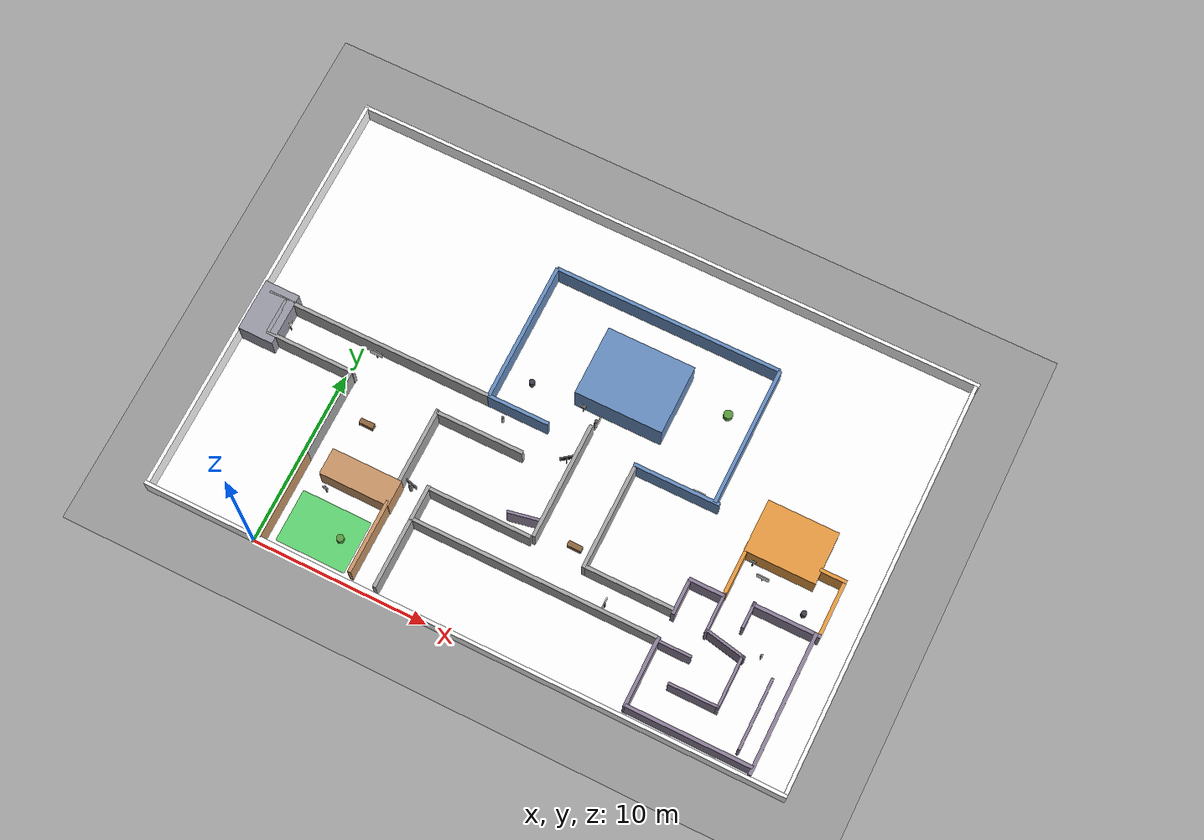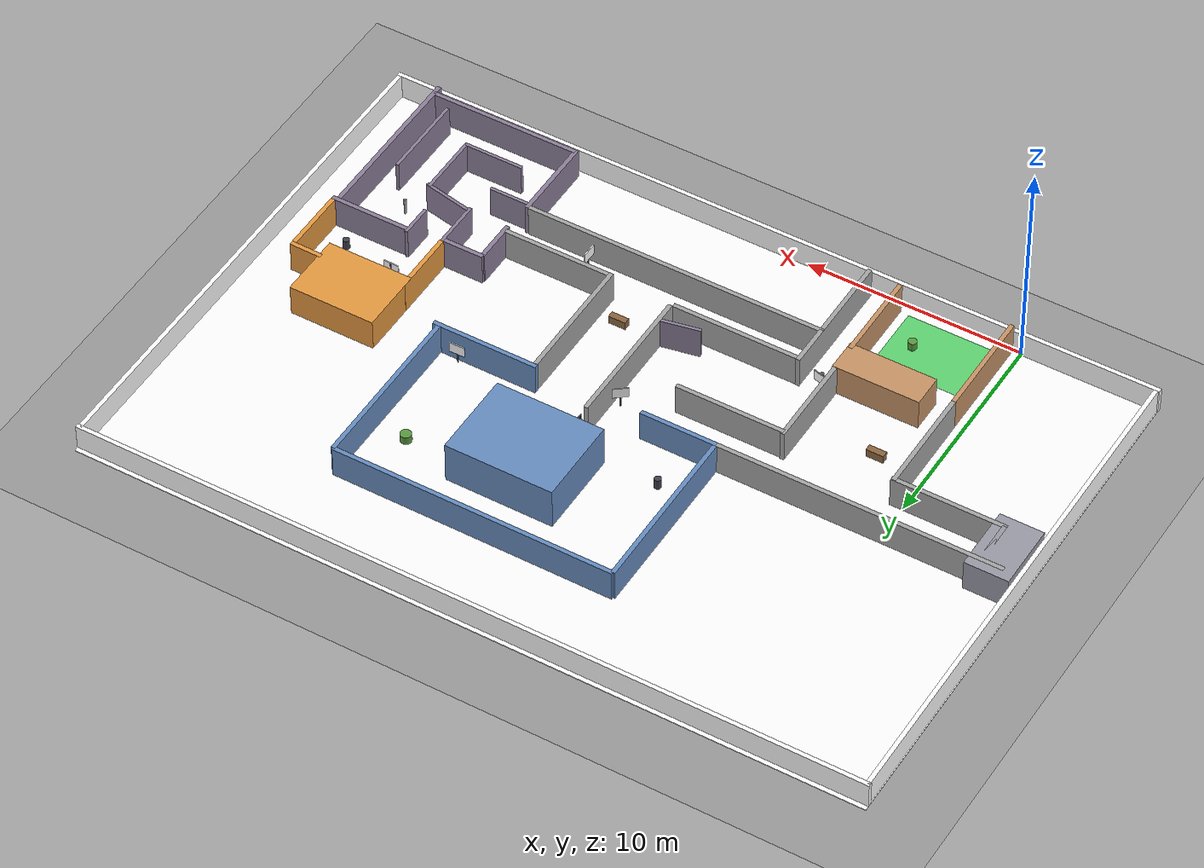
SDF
<sdf version="1.9">
 <world name="canbot_campus">
  <physics name="1ms" type="ignored">
   <max_step_size>0.001</max_step_size>
   <real_time_factor>1</real_time_factor>
   <real_time_update_rate>1000</real_time_update_rate>
  </physics>
  <plugin name="ignition::gazebo::systems::Physics" filename="ignition-gazebo-physics-system"/>
  <plugin name="ignition::gazebo::systems::UserCommands" filename="ignition-gazebo-user-commands-system"/>
  <plugin name="ignition::gazebo::systems::SceneBroadcaster" filename="ignition-gazebo-scene-broadcaster-system"/>
  <plugin name="ignition::gazebo::systems::Sensors" filename="ignition-gazebo-sensors-system">
   <render_engine>ogre2</render_engine>
  </plugin>
  <plugin name="ignition::gazebo::systems::Imu" filename="ignition-gazebo-imu-system"/>
  <gravity>0 0 -9.8</gravity>
  <magnetic_field>6e-06 2.3e-05 -4.2e-05</magnetic_field>
  <atmosphere type="adiabatic"/>
  <scene><ambient>0.4 0.4 0.4 1</ambient><background>0.7 0.7 0.7 1</background><shadows>true</shadows></scene>
  <model name="ground_plane">
   <static>true</static>
   <link name="link">
    <collision name="collision">
     <geometry><plane><normal>0 0 1</normal><size>60 60</size></plane></geometry>
    </collision>
    <visual name="visual">
     <geometry><plane><normal>0 0 1</normal><size>60 60</size></plane></geometry>
     <material><ambient>0.6 0.6 0.6 1</ambient><diffuse>0.6 0.6 0.6 1</diffuse></material>
    </visual>
    <inertial>
     <mass>1</mass>
     <inertia><ixx>1</ixx><ixy>0</ixy><ixz>0</ixz><iyy>1</iyy><iyz>0</iyz><izz>1</izz></inertia>
    </inertial>
   </link>
  </model>
  <model name="campus_grass_floor">
   <static>true</static>
   <pose>11.94 12.1043 0.002 0 -0 0</pose>
   <link name="link">
    <visual name="v">
     <geometry><plane><normal>0 0 1</normal><size>36.4 24.4</size></plane></geometry>
     <material>
      <ambient>1 1 1 1</ambient>
      <diffuse>1 1 1 1</diffuse>
      <specular>0.1 0.1 0.1 1</specular>
      <pbr>
       <metal>
        <albedo_map>model://mini_r1_v1_description/materials/textures/grass.jpg</albedo_map>
        <roughness>0.9</roughness>
        <metalness>0.0</metalness>
       </metal>
      </pbr>
     </material>
    </visual>
    <inertial>
     <mass>1</mass>
     <inertia><ixx>1</ixx><ixy>0</ixy><ixz>0</ixz><iyy>1</iyy><iyz>0</iyz><izz>1</izz></inertia>
    </inertial>
   </link>
  </model>
  <model name="boundary_north">
   <static>true</static>
   <pose>11.9577 24 0.6 0 -0 0</pose>
   <link name="link">
    <collision name="c"><geometry><box><size>36.4 0.2 1.2</size></box></geometry></collision>
    <visual name="v">
     <geometry><box><size>36.4 0.2 1.2</size></box></geometry>
     <material>
      <ambient>1 1 1 1</ambient>
      <diffuse>1 1 1 1</diffuse>
      <specular>0.1 0.1 0.1 1</specular>
      <pbr>
       <metal>
        <albedo_map>model://mini_r1_v1_description/materials/textures/mixed_brick_wall.jpg</albedo_map>
        <roughness>0.9</roughness>
        <metalness>0.0</metalness>
       </metal>
      </pbr>
     </material>
    </visual>
    <inertial>
     <mass>1</mass>
     <inertia><ixx>1</ixx><ixy>0</ixy><ixz>0</ixz><iyy>1</iyy><iyz>0</iyz><izz>1</izz></inertia>
    </inertial>
   </link>
  </model>
  <model name="boundary_south">
   <static>true</static>
   <pose>11.9233 0 0.6 0 -0 0</pose>
   <link name="link">
    <collision name="c"><geometry><box><size>36.4 0.2 1.2</size></box></geometry></collision>
    <visual name="v">
     <geometry><box><size>36.4 0.2 1.2</size></box></geometry>
     <material>
      <ambient>1 1 1 1</ambient>
      <diffuse>1 1 1 1</diffuse>
      <specular>0.1 0.1 0.1 1</specular>
      <pbr>
       <metal>
        <albedo_map>model://mini_r1_v1_description/materials/textures/mixed_brick_wall.jpg</albedo_map>
        <roughness>0.9</roughness>
        <metalness>0.0</metalness>
       </metal>
      </pbr>
     </material>
    </visual>
    <inertial>
     <mass>1</mass>
     <inertia><ixx>1</ixx><ixy>0</ixy><ixz>0</ixz><iyy>1</iyy><iyz>0</iyz><izz>1</izz></inertia>
    </inertial>
   </link>
  </model>
  <model name="boundary_east">
   <static>true</static>
   <pose>30 12 0.6 0 -0 0</pose>
   <link name="link">
    <collision name="c"><geometry><box><size>0.2 24 1.2</size></box></geometry></collision>
    <visual name="v">
     <geometry><box><size>0.2 24 1.2</size></box></geometry>
     <material>
      <ambient>1 1 1 1</ambient>
      <diffuse>1 1 1 1</diffuse>
      <specular>0.1 0.1 0.1 1</specular>
      <pbr>
       <metal>
        <albedo_map>model://mini_r1_v1_description/materials/textures/mixed_brick_wall.jpg</albedo_map>
        <roughness>0.9</roughness>
        <metalness>0.0</metalness>
       </metal>
      </pbr>
     </material>
    </visual>
    <inertial>
     <mass>1</mass>
     <inertia><ixx>1</ixx><ixy>0</ixy><ixz>0</ixz><iyy>1</iyy><iyz>0</iyz><izz>1</izz></inertia>
    </inertial>
   </link>
  </model>
  <model name="boundary_west">
   <static>true</static>
   <pose>-6.11818 12 0.6 0 -0 0</pose>
   <link name="link">
    <collision name="c"><geometry><box><size>0.2 24 1.2</size></box></geometry></collision>
    <visual name="v">
     <geometry><box><size>0.2 24 1.2</size></box></geometry>
     <material>
      <ambient>1 1 1 1</ambient>
      <diffuse>1 1 1 1</diffuse>
      <specular>0.1 0.1 0.1 1</specular>
      <pbr>
       <metal>
        <albedo_map>model://mini_r1_v1_description/materials/textures/mixed_brick_wall.jpg</albedo_map>
        <roughness>0.9</roughness>
        <metalness>0.0</metalness>
       </metal>
      </pbr>
     </material>
    </visual>
    <inertial>
     <mass>1</mass>
     <inertia><ixx>1</ixx><ixy>0</ixy><ixz>0</ixz><iyy>1</iyy><iyz>0</iyz><izz>1</izz></inertia>
    </inertial>
   </link>
  </model>
  <model name="start_zone_marker">
   <static>true</static>
   <pose>3 2 0.053051 0 -0 0</pose>
   <link name="link">
    <visual name="v">
     <geometry><box><size>4 3 0.01</size></box></geometry>
     <material><ambient>0.1 0.75 0.2 0.6</ambient><diffuse>0.15 0.8 0.25 0.7</diffuse></material>
    </visual>
    <inertial>
     <mass>1</mass>
     <inertia><ixx>1</ixx><ixy>0</ixy><ixz>0</ixz><iyy>1</iyy><iyz>0</iyz><izz>1</izz></inertia>
    </inertial>
   </link>
  </model>
  <model name="hostel_building">
   <static>true</static>
   <pose>3.63608 5.09247 0.75 0 -0 0</pose>
   <link name="link">
    <collision name="c"><geometry><box><size>4 1.5 1.5</size></box></geometry></collision>
    <visual name="v">
     <geometry><box><size>4 1.5 1.5</size></box></geometry>
     <material><ambient>0.72 0.52 0.35 1</ambient><diffuse>0.78 0.58 0.4 1</diffuse></material>
    </visual>
    <inertial>
     <mass>1</mass>
     <inertia><ixx>1</ixx><ixy>0</ixy><ixz>0</ixz><iyy>1</iyy><iyz>0</iyz><izz>1</izz></inertia>
    </inertial>
   </link>
  </model>
  <model name="hostel_wall_west">
   <static>true</static>
   <pose>0.474315 2.58058 0.752683 0 -0 0</pose>
   <link name="link">
    <collision name="c"><geometry><box><size>0.2 5 1.5</size></box></geometry></collision>
    <visual name="v">
     <geometry><box><size>0.2 5 1.5</size></box></geometry>
     <material><ambient>0.72 0.52 0.35 1</ambient><diffuse>0.78 0.58 0.4 1</diffuse></material>
    </visual>
    <inertial>
     <mass>1</mass>
     <inertia><ixx>1</ixx><ixy>0</ixy><ixz>0</ixz><iyy>1</iyy><iyz>0</iyz><izz>1</izz></inertia>
    </inertial>
   </link>
  </model>
  <model name="hostel_wall_east">
   <static>true</static>
   <pose>5.5 2.49793 0.75 0 -0 0</pose>
   <link name="link">
    <collision name="c"><geometry><box><size>0.2 4.2 1.5</size></box></geometry></collision>
    <visual name="v">
     <geometry><box><size>0.2 4.2 1.5</size></box></geometry>
     <material><ambient>0.72 0.52 0.35 1</ambient><diffuse>0.78 0.58 0.4 1</diffuse></material>
    </visual>
    <inertial>
     <mass>1</mass>
     <inertia><ixx>1</ixx><ixy>0</ixy><ixz>0</ixz><iyy>1</iyy><iyz>0</iyz><izz>1</izz></inertia>
    </inertial>
   </link>
  </model>
  <model name="walkway_wall_left">
   <static>true</static>
   <pose>0.464978 7.5844 0.769587 0 -0 0</pose>
   <link name="link">
    <collision name="c"><geometry><box><size>0.2 5 1.5</size></box></geometry></collision>
    <visual name="v">
     <geometry><box><size>0.2 5 1.5</size></box></geometry>
     <material><ambient>0.6 0.6 0.6 1</ambient><diffuse>0.65 0.65 0.65 1</diffuse></material>
    </visual>
    <inertial>
     <mass>1</mass>
     <inertia><ixx>1</ixx><ixy>0</ixy><ixz>0</ixz><iyy>1</iyy><iyz>0</iyz><izz>1</izz></inertia>
    </inertial>
   </link>
  </model>
  <model name="walkway_wall_right">
   <static>true</static>
   <pose>5.5 8 0.75 0 -0 0</pose>
   <link name="link">
    <collision name="c"><geometry><box><size>0.2 4.3 1.5</size></box></geometry></collision>
    <visual name="v">
     <geometry><box><size>0.2 4.3 1.5</size></box></geometry>
     <material><ambient>0.6 0.6 0.6 1</ambient><diffuse>0.65 0.65 0.65 1</diffuse></material>
    </visual>
    <inertial>
     <mass>1</mass>
     <inertia><ixx>1</ixx><ixy>0</ixy><ixz>0</ixz><iyy>1</iyy><iyz>0</iyz><izz>1</izz></inertia>
    </inertial>
   </link>
  </model>
  <model name="intersection1_left_passage_top">
   <static>true</static>
   <pose>0.966287 12 0.75 0 -0 0</pose>
   <link name="link">
    <collision name="c"><geometry><box><size>13 0.2 1.5</size></box></geometry></collision>
    <visual name="v">
     <geometry><box><size>13 0.2 1.5</size></box></geometry>
     <material><ambient>0.6 0.6 0.6 1</ambient><diffuse>0.65 0.65 0.65 1</diffuse></material>
    </visual>
    <inertial>
     <mass>1</mass>
     <inertia><ixx>1</ixx><ixy>0</ixy><ixz>0</ixz><iyy>1</iyy><iyz>0</iyz><izz>1</izz></inertia>
    </inertial>
   </link>
  </model>
  <model name="intersection1_left_passage_bot">
   <static>true</static>
   <pose>-2 10 0.75 0 -0 0</pose>
   <link name="link">
    <collision name="c"><geometry><box><size>5.2 0.2 1.5</size></box></geometry></collision>
    <visual name="v">
     <geometry><box><size>5.2 0.2 1.5</size></box></geometry>
     <material><ambient>0.6 0.6 0.6 1</ambient><diffuse>0.65 0.65 0.65 1</diffuse></material>
    </visual>
    <inertial>
     <mass>1</mass>
     <inertia><ixx>1</ixx><ixy>0</ixy><ixz>0</ixz><iyy>1</iyy><iyz>0</iyz><izz>1</izz></inertia>
    </inertial>
   </link>
  </model>
  <model name="intersection1_right_bot">
   <static>true</static>
   <pose>8 10 0.75 0 -0 0</pose>
   <link name="link">
    <collision name="c"><geometry><box><size>5 0.2 1.5</size></box></geometry></collision>
    <visual name="v">
     <geometry><box><size>5 0.2 1.5</size></box></geometry>
     <material><ambient>0.6 0.6 0.6 1</ambient><diffuse>0.65 0.65 0.65 1</diffuse></material>
    </visual>
    <inertial>
     <mass>1</mass>
     <inertia><ixx>1</ixx><ixy>0</ixy><ixz>0</ixz><iyy>1</iyy><iyz>0</iyz><izz>1</izz></inertia>
    </inertial>
   </link>
  </model>
  <model name="admin_building">
   <static>true</static>
   <pose>-5 11 0.75 0 -0 0</pose>
   <link name="link">
    <collision name="c"><geometry><box><size>2 3 1.5</size></box></geometry></collision>
    <visual name="v">
     <geometry><box><size>2 3 1.5</size></box></geometry>
     <material><ambient>0.55 0.55 0.6 1</ambient><diffuse>0.6 0.6 0.65 1</diffuse></material>
    </visual>
    <inertial>
     <mass>1</mass>
     <inertia><ixx>1</ixx><ixy>0</ixy><ixz>0</ixz><iyy>1</iyy><iyz>0</iyz><izz>1</izz></inertia>
    </inertial>
   </link>
  </model>
  <model name="admin_dead_end_wall">
   <static>true</static>
   <pose>-4.5 11 0.75 0 -0 0</pose>
   <link name="link">
    <collision name="c"><geometry><box><size>0.2 2 1.5</size></box></geometry></collision>
    <visual name="v">
     <geometry><box><size>0.2 2 1.5</size></box></geometry>
     <material><ambient>0.55 0.55 0.6 1</ambient><diffuse>0.6 0.6 0.65 1</diffuse></material>
    </visual>
    <inertial>
     <mass>1</mass>
     <inertia><ixx>1</ixx><ixy>0</ixy><ixz>0</ixz><iyy>1</iyy><iyz>0</iyz><izz>1</izz></inertia>
    </inertial>
   </link>
  </model>
  <model name="false_goal_1">
   <static>true</static>
   <pose>-3.5 11 0.005 0 -0 0</pose>
   <link name="link">
    <visual name="v">
     <geometry><box><size>1.2 1.2 0.01</size></box></geometry>
     <material><ambient>0.9 0.15 0.1 0.7</ambient><diffuse>0.95 0.2 0.15 0.8</diffuse></material>
    </visual>
    <inertial>
     <mass>1</mass>
     <inertia><ixx>1</ixx><ixy>0</ixy><ixz>0</ixz><iyy>1</iyy><iyz>0</iyz><izz>1</izz></inertia>
    </inertial>
   </link>
  </model>
  <model name="library_building">
   <static>true</static>
   <pose>14 16 1 0 -0 0</pose>
   <link name="link">
    <collision name="c"><geometry><box><size>5 4 2</size></box></geometry></collision>
    <visual name="v">
     <geometry><box><size>5 4 2</size></box></geometry>
     <material><ambient>0.35 0.5 0.7 1</ambient><diffuse>0.4 0.55 0.75 1</diffuse></material>
    </visual>
    <inertial>
     <mass>1</mass>
     <inertia><ixx>1</ixx><ixy>0</ixy><ixz>0</ixz><iyy>1</iyy><iyz>0</iyz><izz>1</izz></inertia>
    </inertial>
   </link>
  </model>
  <model name="loop_wall_north">
   <static>true</static>
   <pose>14 20 0.75 0 -0 0</pose>
   <link name="link">
    <collision name="c"><geometry><box><size>13 0.2 1.5</size></box></geometry></collision>
    <visual name="v">
     <geometry><box><size>13 0.2 1.5</size></box></geometry>
     <material><ambient>0.35 0.5 0.7 1</ambient><diffuse>0.4 0.55 0.75 1</diffuse></material>
    </visual>
    <inertial>
     <mass>1</mass>
     <inertia><ixx>1</ixx><ixy>0</ixy><ixz>0</ixz><iyy>1</iyy><iyz>0</iyz><izz>1</izz></inertia>
    </inertial>
   </link>
  </model>
  <model name="loop_wall_south_left">
   <static>true</static>
   <pose>9.22666 12 0.75 0 -0 0</pose>
   <link name="link">
    <collision name="c"><geometry><box><size>3.5 0.2 1.5</size></box></geometry></collision>
    <visual name="v">
     <geometry><box><size>3.5 0.2 1.5</size></box></geometry>
     <material><ambient>0.35 0.5 0.7 1</ambient><diffuse>0.4 0.55 0.75 1</diffuse></material>
    </visual>
    <inertial>
     <mass>1</mass>
     <inertia><ixx>1</ixx><ixy>0</ixy><ixz>0</ixz><iyy>1</iyy><iyz>0</iyz><izz>1</izz></inertia>
    </inertial>
   </link>
  </model>
  <model name="loop_wall_south_right">
   <static>true</static>
   <pose>18.338 12 0.75 0 -0 0</pose>
   <link name="link">
    <collision name="c"><geometry><box><size>4.9 0.2 1.5</size></box></geometry></collision>
    <visual name="v">
     <geometry><box><size>4.9 0.2 1.5</size></box></geometry>
     <material><ambient>0.35 0.5 0.7 1</ambient><diffuse>0.4 0.55 0.75 1</diffuse></material>
    </visual>
    <inertial>
     <mass>1</mass>
     <inertia><ixx>1</ixx><ixy>0</ixy><ixz>0</ixz><iyy>1</iyy><iyz>0</iyz><izz>1</izz></inertia>
    </inertial>
   </link>
  </model>
  <model name="loop_wall_east">
   <static>true</static>
   <pose>20.5 16 0.75 0 -0 0</pose>
   <link name="link">
    <collision name="c"><geometry><box><size>0.2 8 1.5</size></box></geometry></collision>
    <visual name="v">
     <geometry><box><size>0.2 8 1.5</size></box></geometry>
     <material><ambient>0.35 0.5 0.7 1</ambient><diffuse>0.4 0.55 0.75 1</diffuse></material>
    </visual>
    <inertial>
     <mass>1</mass>
     <inertia><ixx>1</ixx><ixy>0</ixy><ixz>0</ixz><iyy>1</iyy><iyz>0</iyz><izz>1</izz></inertia>
    </inertial>
   </link>
  </model>
  <model name="loop_wall_west">
   <static>true</static>
   <pose>7.5 16 0.75 0 -0 0</pose>
   <link name="link">
    <collision name="c"><geometry><box><size>0.2 8 1.5</size></box></geometry></collision>
    <visual name="v">
     <geometry><box><size>0.2 8 1.5</size></box></geometry>
     <material><ambient>0.35 0.5 0.7 1</ambient><diffuse>0.4 0.55 0.75 1</diffuse></material>
    </visual>
    <inertial>
     <mass>1</mass>
     <inertia><ixx>1</ixx><ixy>0</ixy><ixz>0</ixz><iyy>1</iyy><iyz>0</iyz><izz>1</izz></inertia>
    </inertial>
   </link>
  </model>
  <model name="intersection2_wall_left">
   <static>true</static>
   <pose>13 9.58261 0.75 0 -0 0</pose>
   <link name="link">
    <collision name="c"><geometry><box><size>0.2 6.7 1.5</size></box></geometry></collision>
    <visual name="v">
     <geometry><box><size>0.2 6.7 1.5</size></box></geometry>
     <material><ambient>0.6 0.6 0.6 1</ambient><diffuse>0.65 0.65 0.65 1</diffuse></material>
    </visual>
    <inertial>
     <mass>1</mass>
     <inertia><ixx>1</ixx><ixy>0</ixy><ixz>0</ixz><iyy>1</iyy><iyz>0</iyz><izz>1</izz></inertia>
    </inertial>
   </link>
  </model>
  <model name="intersection2_wall_right">
   <static>true</static>
   <pose>16 8.89782 0.75 0 -0 0</pose>
   <link name="link">
    <collision name="c"><geometry><box><size>0.2 6 1.5</size></box></geometry></collision>
    <visual name="v">
     <geometry><box><size>0.2 6 1.5</size></box></geometry>
     <material><ambient>0.6 0.6 0.6 1</ambient><diffuse>0.65 0.65 0.65 1</diffuse></material>
    </visual>
    <inertial>
     <mass>1</mass>
     <inertia><ixx>1</ixx><ixy>0</ixy><ixz>0</ixz><iyy>1</iyy><iyz>0</iyz><izz>1</izz></inertia>
    </inertial>
   </link>
  </model>
  <model name="intersection2_bottom_left">
   <static>true</static>
   <pose>10 6.14898 0.75 0 -0 0</pose>
   <link name="link">
    <collision name="c"><geometry><box><size>5.8 0.2 1.5</size></box></geometry></collision>
    <visual name="v">
     <geometry><box><size>5.8 0.2 1.5</size></box></geometry>
     <material><ambient>0.6 0.6 0.6 1</ambient><diffuse>0.65 0.65 0.65 1</diffuse></material>
    </visual>
    <inertial>
     <mass>1</mass>
     <inertia><ixx>1</ixx><ixy>0</ixy><ixz>0</ixz><iyy>1</iyy><iyz>0</iyz><izz>1</izz></inertia>
    </inertial>
   </link>
  </model>
  <model name="intersection2_bottom_right">
   <static>true</static>
   <pose>18.5504 6 0.75 0 -0 0</pose>
   <link name="link">
    <collision name="c"><geometry><box><size>5 0.2 1.5</size></box></geometry></collision>
    <visual name="v">
     <geometry><box><size>5 0.2 1.5</size></box></geometry>
     <material><ambient>0.6 0.6 0.6 1</ambient><diffuse>0.65 0.65 0.65 1</diffuse></material>
    </visual>
    <inertial>
     <mass>1</mass>
     <inertia><ixx>1</ixx><ixy>0</ixy><ixz>0</ixz><iyy>1</iyy><iyz>0</iyz><izz>1</izz></inertia>
    </inertial>
   </link>
  </model>
  <model name="false_goal_2_corridor_top">
   <static>true</static>
   <pose>13.9321 4.31737 0.75 0 -0 0</pose>
   <link name="link">
    <collision name="c"><geometry><box><size>14 0.2 1.5</size></box></geometry></collision>
    <visual name="v">
     <geometry><box><size>14 0.2 1.5</size></box></geometry>
     <material><ambient>0.6 0.6 0.6 1</ambient><diffuse>0.65 0.65 0.65 1</diffuse></material>
    </visual>
    <inertial>
     <mass>1</mass>
     <inertia><ixx>1</ixx><ixy>0</ixy><ixz>0</ixz><iyy>1</iyy><iyz>0</iyz><izz>1</izz></inertia>
    </inertial>
   </link>
  </model>
  <model name="false_goal_2_end_wall">
   <static>true</static>
   <pose>7 3.26445 0.75 0 -0 0</pose>
   <link name="link">
    <collision name="c"><geometry><box><size>0.2 6 1.5</size></box></geometry></collision>
    <visual name="v">
     <geometry><box><size>0.2 6 1.5</size></box></geometry>
     <material><ambient>0.6 0.6 0.6 1</ambient><diffuse>0.65 0.65 0.65 1</diffuse></material>
    </visual>
    <inertial>
     <mass>1</mass>
     <inertia><ixx>1</ixx><ixy>0</ixy><ixz>0</ixz><iyy>1</iyy><iyz>0</iyz><izz>1</izz></inertia>
    </inertial>
   </link>
  </model>
  <model name="false_goal_2">
   <static>true</static>
   <pose>8 5.25 0.005 0 -0 0</pose>
   <link name="link">
    <visual name="v">
     <geometry><box><size>1.2 1.2 0.01</size></box></geometry>
     <material><ambient>0.9 0.15 0.1 0.7</ambient><diffuse>0.95 0.2 0.15 0.8</diffuse></material>
    </visual>
    <inertial>
     <mass>1</mass>
     <inertia><ixx>1</ixx><ixy>0</ixy><ixz>0</ixz><iyy>1</iyy><iyz>0</iyz><izz>1</izz></inertia>
    </inertial>
   </link>
  </model>
  <model name="maze_outer_west">
   <static>true</static>
   <pose>21 2.40063 0.746296 0 -0 0</pose>
   <link name="link">
    <collision name="c"><geometry><box><size>0.2 4 1.5</size></box></geometry></collision>
    <visual name="v">
     <geometry><box><size>0.2 4 1.5</size></box></geometry>
     <material><ambient>0.5 0.45 0.55 1</ambient><diffuse>0.55 0.5 0.6 1</diffuse></material>
    </visual>
    <inertial>
     <mass>1</mass>
     <inertia><ixx>1</ixx><ixy>0</ixy><ixz>0</ixz><iyy>1</iyy><iyz>0</iyz><izz>1</izz></inertia>
    </inertial>
   </link>
  </model>
  <model name="maze_outer_east">
   <static>true</static>
   <pose>28 4.08941 0.75 0 -0 0</pose>
   <link name="link">
    <collision name="c"><geometry><box><size>0.2 8 1.5</size></box></geometry></collision>
    <visual name="v">
     <geometry><box><size>0.2 8 1.5</size></box></geometry>
     <material><ambient>0.5 0.45 0.55 1</ambient><diffuse>0.55 0.5 0.6 1</diffuse></material>
    </visual>
    <inertial>
     <mass>1</mass>
     <inertia><ixx>1</ixx><ixy>0</ixy><ixz>0</ixz><iyy>1</iyy><iyz>0</iyz><izz>1</izz></inertia>
    </inertial>
   </link>
  </model>
  <model name="maze_outer_west_1">
   <static>true</static>
   <pose>21.1091 6.73597 0.746296 0 -0 0</pose>
   <link name="link">
    <collision name="c"><geometry><box><size>0.2 2 1.5</size></box></geometry></collision>
    <visual name="v">
     <geometry><box><size>0.2 2 1.5</size></box></geometry>
     <material><ambient>0.5 0.45 0.55 1</ambient><diffuse>0.55 0.5 0.6 1</diffuse></material>
    </visual>
    <inertial>
     <mass>1</mass>
     <inertia><ixx>1</ixx><ixy>0</ixy><ixz>0</ixz><iyy>1</iyy><iyz>0</iyz><izz>1</izz></inertia>
    </inertial>
   </link>
  </model>
  <model name="maze_outer_south">
   <static>true</static>
   <pose>24.5 0.5 0.75 0 -0 0</pose>
   <link name="link">
    <collision name="c"><geometry><box><size>7 0.2 1.5</size></box></geometry></collision>
    <visual name="v">
     <geometry><box><size>7 0.2 1.5</size></box></geometry>
     <material><ambient>0.5 0.45 0.55 1</ambient><diffuse>0.55 0.5 0.6 1</diffuse></material>
    </visual>
    <inertial>
     <mass>1</mass>
     <inertia><ixx>1</ixx><ixy>0</ixy><ixz>0</ixz><iyy>1</iyy><iyz>0</iyz><izz>1</izz></inertia>
    </inertial>
   </link>
  </model>
  <model name="maze_outer_north">
   <static>true</static>
   <pose>26.3829 8 0.75 0 -0 0</pose>
   <link name="link">
    <collision name="c"><geometry><box><size>3.8 0.2 1.5</size></box></geometry></collision>
    <visual name="v">
     <geometry><box><size>3.8 0.2 1.5</size></box></geometry>
     <material><ambient>0.5 0.45 0.55 1</ambient><diffuse>0.55 0.5 0.6 1</diffuse></material>
    </visual>
    <inertial>
     <mass>1</mass>
     <inertia><ixx>1</ixx><ixy>0</ixy><ixz>0</ixz><iyy>1</iyy><iyz>0</iyz><izz>1</izz></inertia>
    </inertial>
   </link>
  </model>
  <model name="maze_outer_north_1">
   <static>true</static>
   <pose>22.0548 7.75924 0.75 0 -0 0</pose>
   <link name="link">
    <collision name="c"><geometry><box><size>2 0.2 1.5</size></box></geometry></collision>
    <visual name="v">
     <geometry><box><size>2 0.2 1.5</size></box></geometry>
     <material><ambient>0.5 0.45 0.55 1</ambient><diffuse>0.55 0.5 0.6 1</diffuse></material>
    </visual>
    <inertial>
     <mass>1</mass>
     <inertia><ixx>1</ixx><ixy>0</ixy><ixz>0</ixz><iyy>1</iyy><iyz>0</iyz><izz>1</izz></inertia>
    </inertial>
   </link>
  </model>
  <model name="maze_w1">
   <static>true</static>
   <pose>23 6.76354 0.75 0 -0 0</pose>
   <link name="link">
    <collision name="c"><geometry><box><size>0.15 2.3 1.5</size></box></geometry></collision>
    <visual name="v">
     <geometry><box><size>0.15 2.3 1.5</size></box></geometry>
     <material><ambient>0.5 0.45 0.55 1</ambient><diffuse>0.55 0.5 0.6 1</diffuse></material>
    </visual>
    <inertial>
     <mass>1</mass>
     <inertia><ixx>1</ixx><ixy>0</ixy><ixz>0</ixz><iyy>1</iyy><iyz>0</iyz><izz>1</izz></inertia>
    </inertial>
   </link>
  </model>
  <model name="maze_w2">
   <static>true</static>
   <pose>24.1322 5.54209 0.75 0 0 -0.195597</pose>
   <link name="link">
    <collision name="c"><geometry><box><size>2.4 0.15 1.5</size></box></geometry></collision>
    <visual name="v">
     <geometry><box><size>2.4 0.15 1.5</size></box></geometry>
     <material><ambient>0.5 0.45 0.55 1</ambient><diffuse>0.55 0.5 0.6 1</diffuse></material>
    </visual>
    <inertial>
     <mass>1</mass>
     <inertia><ixx>1</ixx><ixy>0</ixy><ixz>0</ixz><iyy>1</iyy><iyz>0</iyz><izz>1</izz></inertia>
    </inertial>
   </link>
  </model>
  <model name="maze_w3">
   <static>true</static>
   <pose>25.1668 3.88669 0.75 0 -0 0</pose>
   <link name="link">
    <collision name="c"><geometry><box><size>0.15 3 1.5</size></box></geometry></collision>
    <visual name="v">
     <geometry><box><size>0.15 3 1.5</size></box></geometry>
     <material><ambient>0.5 0.45 0.55 1</ambient><diffuse>0.55 0.5 0.6 1</diffuse></material>
    </visual>
    <inertial>
     <mass>1</mass>
     <inertia><ixx>1</ixx><ixy>0</ixy><ixz>0</ixz><iyy>1</iyy><iyz>0</iyz><izz>1</izz></inertia>
    </inertial>
   </link>
  </model>
  <model name="maze_w4">
   <static>true</static>
   <pose>23.8292 2.46324 0.75 0 -0 0</pose>
   <link name="link">
    <collision name="c"><geometry><box><size>2.8 0.15 1.5</size></box></geometry></collision>
    <visual name="v">
     <geometry><box><size>2.8 0.15 1.5</size></box></geometry>
     <material><ambient>0.5 0.45 0.55 1</ambient><diffuse>0.55 0.5 0.6 1</diffuse></material>
    </visual>
    <inertial>
     <mass>1</mass>
     <inertia><ixx>1</ixx><ixy>0</ixy><ixz>0</ixz><iyy>1</iyy><iyz>0</iyz><izz>1</izz></inertia>
    </inertial>
   </link>
  </model>
  <model name="maze_w5">
   <static>true</static>
   <pose>27 3 0.75 0 -0 0</pose>
   <link name="link">
    <collision name="c"><geometry><box><size>0.15 4 1.5</size></box></geometry></collision>
    <visual name="v">
     <geometry><box><size>0.15 4 1.5</size></box></geometry>
     <material><ambient>0.5 0.45 0.55 1</ambient><diffuse>0.55 0.5 0.6 1</diffuse></material>
    </visual>
    <inertial>
     <mass>1</mass>
     <inertia><ixx>1</ixx><ixy>0</ixy><ixz>0</ixz><iyy>1</iyy><iyz>0</iyz><izz>1</izz></inertia>
    </inertial>
   </link>
  </model>
  <model name="maze_w6">
   <static>true</static>
   <pose>24.5538 7.41299 0.75 0 -0 0</pose>
   <link name="link">
    <collision name="c"><geometry><box><size>0.15 1.5 1.5</size></box></geometry></collision>
    <visual name="v">
     <geometry><box><size>0.15 1.5 1.5</size></box></geometry>
     <material><ambient>0.5 0.45 0.55 1</ambient><diffuse>0.55 0.5 0.6 1</diffuse></material>
    </visual>
    <inertial>
     <mass>1</mass>
     <inertia><ixx>1</ixx><ixy>0</ixy><ixz>0</ixz><iyy>1</iyy><iyz>0</iyz><izz>1</izz></inertia>
    </inertial>
   </link>
  </model>
  <model name="maze_deadend_wall">
   <static>true</static>
   <pose>22 4.17662 0.75 0 -0 0</pose>
   <link name="link">
    <collision name="c"><geometry><box><size>1.8 0.15 1.5</size></box></geometry></collision>
    <visual name="v">
     <geometry><box><size>1.8 0.15 1.5</size></box></geometry>
     <material><ambient>0.5 0.45 0.55 1</ambient><diffuse>0.55 0.5 0.6 1</diffuse></material>
    </visual>
    <inertial>
     <mass>1</mass>
     <inertia><ixx>1</ixx><ixy>0</ixy><ixz>0</ixz><iyy>1</iyy><iyz>0</iyz><izz>1</izz></inertia>
    </inertial>
   </link>
  </model>
  <model name="cafeteria_building">
   <static>true</static>
   <pose>24.9056 11.8446 0.75 0 -0 0</pose>
   <link name="link">
    <collision name="c"><geometry><box><size>4 3 1.5</size></box></geometry></collision>
    <visual name="v">
     <geometry><box><size>4 3 1.5</size></box></geometry>
     <material><ambient>0.85 0.55 0.2 1</ambient><diffuse>0.9 0.6 0.25 1</diffuse></material>
    </visual>
    <inertial>
     <mass>1</mass>
     <inertia><ixx>1</ixx><ixy>0</ixy><ixz>0</ixz><iyy>1</iyy><iyz>0</iyz><izz>1</izz></inertia>
    </inertial>
   </link>
  </model>
  <model name="cafe_passage_left">
   <static>true</static>
   <pose>23 9.36928 0.75 0 -0 0</pose>
   <link name="link">
    <collision name="c"><geometry><box><size>0.2 3 1.5</size></box></geometry></collision>
    <visual name="v">
     <geometry><box><size>0.2 3 1.5</size></box></geometry>
     <material><ambient>0.85 0.55 0.2 1</ambient><diffuse>0.9 0.6 0.25 1</diffuse></material>
    </visual>
    <inertial>
     <mass>1</mass>
     <inertia><ixx>1</ixx><ixy>0</ixy><ixz>0</ixz><iyy>1</iyy><iyz>0</iyz><izz>1</izz></inertia>
    </inertial>
   </link>
  </model>
  <model name="true_goal">
   <static>true</static>
   <pose>24.5426 9.66349 0.005 0 -0 0</pose>
   <link name="link">
    <visual name="v">
     <geometry><box><size>2.5 2.5 0.01</size></box></geometry>
     <material><ambient>0.1 0.85 0.2 0.7</ambient><diffuse>0.15 0.9 0.25 0.8</diffuse></material>
    </visual>
    <inertial>
     <mass>1</mass>
     <inertia><ixx>1</ixx><ixy>0</ixy><ixz>0</ixz><iyy>1</iyy><iyz>0</iyz><izz>1</izz></inertia>
    </inertial>
   </link>
  </model>
  <model name="aruco_marker_1">
   <static>true</static>
   <pose>2.13703 3.96224 0.5 0 -0 3.13191</pose>
   <link name="link">
    <visual name="post_v">
     <geometry><cylinder><radius>0.029999999999999999</radius><length>1</length></cylinder></geometry>
     <material>
      <ambient>0.3 0.3 0.3 1</ambient>
      <diffuse>0.3 0.3 0.3 1</diffuse>
      <emissive>0.3 0.3 0.3 1</emissive>
     </material>
    </visual>
    <visual name="panel_v">
     <geometry><box><size>0.3 0.02 0.3</size></box></geometry>
     <pose>0 0.05 0.35 0 0 0</pose>
     <material>
      <ambient>1 1 1 1</ambient>
      <diffuse>1 1 1 1</diffuse>
      <specular>1 1 1 1</specular>
      <pbr>
       <metal>
        <albedo_map>model://mini_r1_v1_description/materials/textures/marker_24.png</albedo_map>
        <roughness>0.2</roughness>
        <metalness>0.0</metalness>
       </metal>
      </pbr>
     </material>
    </visual>
    <visual name="border_v">
     <geometry><box><size>0.34 0.015 0.34</size></box></geometry>
     <pose>0 0.03 0.35 0 0 0</pose>
     <material><ambient>1 1 1 1</ambient><diffuse>1 1 1 1</diffuse><emissive>1 1 1 1</emissive></material>
    </visual>
    <inertial>
     <mass>1</mass>
     <inertia><ixx>1</ixx><ixy>0</ixy><ixz>0</ixz><iyy>1</iyy><iyz>0</iyz><izz>1</izz></inertia>
    </inertial>
   </link>
  </model>
  <model name="aruco_marker_2">
   <static>true</static>
   <pose>-3.85915 11.0614 0.5 0 0 -1.58006</pose>
   <link name="link">
    <visual name="post_v">
     <geometry><cylinder><radius>0.029999999999999999</radius><length>1</length></cylinder></geometry>
     <material><ambient>0.3 0.3 0.3 1</ambient><diffuse>0.3 0.3 0.3 1</diffuse></material>
    </visual>
    <visual name="panel_v">
     <geometry><box><size>0.3 0.02 0.3</size></box></geometry>
     <pose>0 0.05 0.35 0 0 0</pose>
     <material>
      <ambient>1 1 1 1</ambient>
      <diffuse>1 1 1 1</diffuse>
      <specular>1 1 1 1</specular>
      <pbr>
       <metal>
        <albedo_map>model://mini_r1_v1_description/materials/textures/marker_25.png</albedo_map>
        <roughness>0.4</roughness>
        <metalness>0.0</metalness>
       </metal>
      </pbr>
     </material>
    </visual>
    <visual name="border_v">
     <geometry><box><size>0.34 0.015 0.34</size></box></geometry>
     <pose>0 0.03 0.35 0 0 0</pose>
     <material>
      <ambient>1 1 1 1</ambient>
      <diffuse>1 1 1 1</diffuse>
      <specular>1 1 1 1</specular>
      <emissive>1 1 1 1</emissive>
     </material>
    </visual>
    <inertial>
     <mass>1</mass>
     <inertia><ixx>1</ixx><ixy>0</ixy><ixz>0</ixz><iyy>1</iyy><iyz>0</iyz><izz>1</izz></inertia>
    </inertial>
   </link>
  </model>
  <model name="aruco_marker_3">
   <static>true</static>
   <pose>12.0765 13.8797 0.543563 0 -0 -3.13496</pose>
   <link name="link">
    <visual name="post_v">
     <geometry><cylinder><radius>0.029999999999999999</radius><length>1</length></cylinder></geometry>
     <material><ambient>0.3 0.3 0.3 1</ambient><diffuse>0.3 0.3 0.3 1</diffuse></material>
    </visual>
    <visual name="panel_v">
     <geometry><box><size>0.3 0.02 0.3</size></box></geometry>
     <pose>0 0.05 0.35 0 0 0</pose>
     <material>
      <ambient>1 1 1 1</ambient>
      <diffuse>1 1 1 1</diffuse>
      <specular>1 1 1 1</specular>
      <pbr>
       <metal>
        <albedo_map>model://mini_r1_v1_description/materials/textures/marker_26.png</albedo_map>
        <roughness>0.4</roughness>
        <metalness>0.0</metalness>
       </metal>
      </pbr>
     </material>
    </visual>
    <visual name="border_v">
     <geometry><box><size>0.34 0.015 0.34</size></box></geometry>
     <pose>0 0.03 0.35 0 0 0</pose>
     <material><ambient>1 1 1 1</ambient><diffuse>1 1 1 1</diffuse><emissive>1 1 1 1</emissive></material>
    </visual>
    <inertial>
     <mass>1</mass>
     <inertia><ixx>1</ixx><ixy>0</ixy><ixz>0</ixz><iyy>1</iyy><iyz>0</iyz><izz>1</izz></inertia>
    </inertial>
   </link>
  </model>
  <model name="aruco_marker_4">
   <static>true</static>
   <pose>23.5615 10.23 0.5 0 -0 3.13209</pose>
   <link name="link">
    <visual name="post_v">
     <geometry><cylinder><radius>0.029999999999999999</radius><length>1</length></cylinder></geometry>
     <material><ambient>0.3 0.3 0.3 1</ambient><diffuse>0.3 0.3 0.3 1</diffuse></material>
    </visual>
    <visual name="panel_v">
     <geometry><box><size>0.3 0.02 0.3</size></box></geometry>
     <pose>0 0.05 0.35 0 0 0</pose>
     <material>
      <ambient>1 1 1 1</ambient>
      <diffuse>1 1 1 1</diffuse>
      <specular>1 1 1 1</specular>
      <pbr>
       <metal>
        <albedo_map>model://mini_r1_v1_description/materials/textures/marker_27.png</albedo_map>
        <roughness>0.4</roughness>
        <metalness>0.0</metalness>
       </metal>
      </pbr>
     </material>
    </visual>
    <visual name="border_v">
     <geometry><box><size>0.34 0.015 0.34</size></box></geometry>
     <pose>0 0.03 0.35 0 0 0</pose>
     <material><ambient>1 1 1 1</ambient><diffuse>1 1 1 1</diffuse><emissive>1 1 1 1</emissive></material>
    </visual>
    <inertial>
     <mass>1</mass>
     <inertia><ixx>1</ixx><ixy>0</ixy><ixz>0</ixz><iyy>1</iyy><iyz>0</iyz><izz>1</izz></inertia>
    </inertial>
   </link>
  </model>
  <model name="sign_right">
   <static>true</static>
   <pose>12.5754 10.9157 0.5 0 -0 0.665625</pose>
   <link name="link">
    <collision name="post_c">
     <geometry><cylinder><radius>0.025000000000000001</radius><length>1</length></cylinder></geometry>
    </collision>
    <visual name="post_v">
     <geometry><cylinder><radius>0.025000000000000001</radius><length>1</length></cylinder></geometry>
     <material><ambient>0.4 0.4 0.4 1</ambient></material>
    </visual>
    <visual name="sign_board_v">
     <geometry><box><size>0.7 0.04 0.5</size></box></geometry>
     <pose>0 0.04 0.3 0 0 0</pose>
     <material><ambient>0.05 0.05 0.05 1</ambient><diffuse>0.05 0.05 0.05 1</diffuse></material>
    </visual>
    <visual name="sign_face_v">
     <geometry><box><size>0.7 0.002 0.5</size></box></geometry>
     <pose>0 0.061 0.3 0 0 0</pose>
     <material>
      <ambient>1 1 1 1</ambient>
      <diffuse>1 1 1 1</diffuse>
      <specular>0.5 0.5 0.5 1</specular>
      <pbr>
       <metal>
        <albedo_map>model://mini_r1_v1_description/materials/textures/right.jpeg</albedo_map>
        <roughness>0.4</roughness>
        <metalness>0.0</metalness>
       </metal>
      </pbr>
     </material>
    </visual>
    <inertial>
     <mass>1</mass>
     <inertia><ixx>1</ixx><ixy>0</ixy><ixz>0</ixz><iyy>1</iyy><iyz>0</iyz><izz>1</izz></inertia>
    </inertial>
   </link>
  </model>
  <model name="sign_left_misleading">
   <static>true</static>
   <pose>0.982991 11.7096 0.5 0 -0 -3.11763</pose>
   <link name="link">
    <collision name="post_c">
     <geometry><cylinder><radius>0.025000000000000001</radius><length>1</length></cylinder></geometry>
    </collision>
    <visual name="post_v">
     <geometry><cylinder><radius>0.025000000000000001</radius><length>1</length></cylinder></geometry>
     <material><ambient>0.4 0.4 0.4 1</ambient></material>
    </visual>
    <visual name="sign_v">
     <geometry><box><size>0.7 0.04 0.5</size></box></geometry>
     <pose>0 0.04 0.3 0 0 0</pose>
     <material>
      <ambient>1 1 1 1</ambient>
      <diffuse>1 1 1 1</diffuse>
      <specular>0.5 0.5 0.5 1</specular>
      <pbr>
       <metal>
        <albedo_map>model://mini_r1_v1_description/materials/textures/left.jpeg</albedo_map>
        <roughness>0.4</roughness>
        <metalness>0.0</metalness>
       </metal>
      </pbr>
     </material>
    </visual>
    <inertial>
     <mass>1</mass>
     <inertia><ixx>1</ixx><ixy>0</ixy><ixz>0</ixz><iyy>1</iyy><iyz>0</iyz><izz>1</izz></inertia>
    </inertial>
   </link>
  </model>
  <model name="sign_left_1">
   <static>true</static>
   <pose>13.0484 13.3623 0.551445 -0.029394 -0.000464 -1.58659</pose>
   <link name="link">
    <collision name="post_c">
     <geometry><cylinder><radius>0.070000000000000007</radius><length>1</length></cylinder></geometry>
    </collision>
    <visual name="post_v">
     <geometry><cylinder><radius>0.086999999999999994</radius><length>1</length></cylinder></geometry>
     <material><ambient>0.4 0.4 0.4 1</ambient></material>
    </visual>
    <visual name="sign_back_visual">
     <geometry><box><size>0.7 0.04 0.5</size></box></geometry>
     <pose>0 0.108 0.3 0 0 0</pose>
     <material>
      <ambient>0.05 0.05 0.05 1</ambient>
      <diffuse>0.05 0.05 0.05 1</diffuse>
      <specular>0.1 0.1 0.1 1</specular>
     </material>
    </visual>
    <visual name="sign_face_visual">
     <geometry><box><size>0.7 0.002 0.5</size></box></geometry>
     <pose>0 0.129 0.3 0 0 0</pose>
     <material>
      <ambient>1 1 1 1</ambient>
      <diffuse>1 1 1 1</diffuse>
      <specular>0.5 0.5 0.5 1</specular>
      <pbr>
       <metal>
        <albedo_map>model://mini_r1_v1_description/materials/textures/left.jpeg</albedo_map>
        <roughness>0.4</roughness>
        <metalness>0.0</metalness>
       </metal>
      </pbr>
     </material>
    </visual>
    <inertial>
     <mass>1</mass>
     <inertia><ixx>1</ixx><ixy>0</ixy><ixz>0</ixz><iyy>1</iyy><iyz>0</iyz><izz>1</izz></inertia>
    </inertial>
   </link>
  </model>
  <model name="sign_stop">
   <static>true</static>
   <pose>5.99074 6.00448 0.5 0 0 -0.252997</pose>
   <link name="link">
    <collision name="post_c">
     <geometry><cylinder><radius>0.070000000000000007</radius><length>1</length></cylinder></geometry>
    </collision>
    <visual name="post_v">
     <geometry><cylinder><radius>0.086999999999999994</radius><length>1</length></cylinder></geometry>
     <material><ambient>0.4 0.4 0.4 1</ambient></material>
    </visual>
    <visual name="sign_back_visual">
     <geometry><box><size>0.7 0.04 0.5</size></box></geometry>
     <pose>0 0.108 0.3 0 0 0</pose>
     <material>
      <ambient>0.05 0.05 0.05 1</ambient>
      <diffuse>0.05 0.05 0.05 1</diffuse>
      <specular>0.1 0.1 0.1 1</specular>
     </material>
    </visual>
    <visual name="sign_face_visual">
     <geometry><box><size>0.7 0.002 0.5</size></box></geometry>
     <pose>0 0.129 0.3 0 0 0</pose>
     <material>
      <ambient>1 1 1 1</ambient>
      <diffuse>1 1 1 1</diffuse>
      <specular>0.5 0.5 0.5 1</specular>
      <pbr>
       <metal>
        <albedo_map>model://mini_r1_v1_description/materials/textures/stop.jpeg</albedo_map>
        <roughness>0.4</roughness>
        <metalness>0.0</metalness>
       </metal>
      </pbr>
     </material>
    </visual>
    <inertial>
     <mass>1</mass>
     <inertia><ixx>1</ixx><ixy>0</ixy><ixz>0</ixz><iyy>1</iyy><iyz>0</iyz><izz>1</izz></inertia>
    </inertial>
   </link>
  </model>
  <model name="forward">
   <static>true</static>
   <pose>17.7664 4.83396 0.5 0 -0 1.56648</pose>
   <link name="link">
    <collision name="post_c">
     <geometry><cylinder><radius>0.025000000000000001</radius><length>1</length></cylinder></geometry>
    </collision>
    <visual name="post_v">
     <geometry><cylinder><radius>0.025000000000000001</radius><length>1</length></cylinder></geometry>
     <material><ambient>0.4 0.4 0.4 1</ambient></material>
    </visual>
    <visual name="sign_v">
     <geometry><box><size>0.7 0.04 0.5</size></box></geometry>
     <pose>0 0.04 0.3 0 0 0</pose>
     <material>
      <ambient>1 1 1 1</ambient>
      <diffuse>1 1 1 1</diffuse>
      <specular>0.5 0.5 0.5 1</specular>
      <pbr>
       <metal>
        <albedo_map>model://mini_r1_v1_description/materials/textures/forward.jpeg</albedo_map>
        <roughness>0.4</roughness>
        <metalness>0.0</metalness>
       </metal>
      </pbr>
     </material>
    </visual>
    <inertial>
     <mass>1</mass>
     <inertia><ixx>1</ixx><ixy>0</ixy><ixz>0</ixz><iyy>1</iyy><iyz>0</iyz><izz>1</izz></inertia>
    </inertial>
   </link>
  </model>
  <model name="rotate">
   <static>true</static>
   <pose>19.5075 12.2393 0.5 0 -0 0.024278</pose>
   <link name="link">
    <collision name="post_c">
     <geometry><cylinder><radius>0.025000000000000001</radius><length>1</length></cylinder></geometry>
    </collision>
    <visual name="post_v">
     <geometry><cylinder><radius>0.025000000000000001</radius><length>1</length></cylinder></geometry>
     <material><ambient>0.4 0.4 0.4 1</ambient></material>
    </visual>
    <visual name="sign_v">
     <geometry><box><size>0.7 0.04 0.5</size></box></geometry>
     <pose>0 0.04 0.3 0 0 0</pose>
     <material>
      <ambient>1 1 1 1</ambient>
      <diffuse>1 1 1 1</diffuse>
      <specular>0.5 0.5 0.5 1</specular>
      <pbr>
       <metal>
        <albedo_map>model://mini_r1_v1_description/materials/textures/rotate.jpeg</albedo_map>
        <roughness>0.4</roughness>
        <metalness>0.0</metalness>
       </metal>
      </pbr>
     </material>
    </visual>
    <inertial>
     <mass>1</mass>
     <inertia><ixx>1</ixx><ixy>0</ixy><ixz>0</ixz><iyy>1</iyy><iyz>0</iyz><izz>1</izz></inertia>
    </inertial>
   </link>
  </model>
  <model name="sign_goal">
   <static>true</static>
   <pose>24.3503 9.69746 0.5 0 -0 3.12716</pose>
   <link name="link">
    <collision name="post_c">
     <geometry><cylinder><radius>0.025000000000000001</radius><length>1</length></cylinder></geometry>
    </collision>
    <visual name="post_v">
     <geometry><cylinder><radius>0.025000000000000001</radius><length>1</length></cylinder></geometry>
     <material><ambient>0.4 0.4 0.4 1</ambient></material>
    </visual>
    <visual name="sign_v">
     <geometry><box><size>0.7 0.04 0.5</size></box></geometry>
     <pose>0 0.04 0.3 0 0 0</pose>
     <material>
      <ambient>1 1 1 1</ambient>
      <diffuse>1 1 1 1</diffuse>
      <specular>0.5 0.5 0.5 1</specular>
      <pbr>
       <metal>
        <albedo_map>model://mini_r1_v1_description/materials/textures/goal.jpeg</albedo_map>
        <roughness>0.4</roughness>
        <metalness>0.0</metalness>
       </metal>
      </pbr>
     </material>
    </visual>
    <inertial>
     <mass>1</mass>
     <inertia><ixx>1</ixx><ixy>0</ixy><ixz>0</ixz><iyy>1</iyy><iyz>0</iyz><izz>1</izz></inertia>
    </inertial>
   </link>
  </model>
  <model name="obstacle_bench_1">
   <static>true</static>
   <pose>2.29127 8.11548 0.2 0 -0 0</pose>
   <link name="link">
    <collision name="c"><geometry><box><size>0.8 0.3 0.4</size></box></geometry></collision>
    <visual name="v">
     <geometry><box><size>0.8 0.3 0.4</size></box></geometry>
     <material><ambient>0.5 0.35 0.2 1</ambient><diffuse>0.55 0.4 0.25 1</diffuse></material>
    </visual>
    <inertial>
     <mass>1</mass>
     <inertia><ixx>1</ixx><ixy>0</ixy><ixz>0</ixz><iyy>1</iyy><iyz>0</iyz><izz>1</izz></inertia>
    </inertial>
   </link>
  </model>
  <model name="obstacle_pole_1">
   <static>true</static>
   <pose>8.56075 11.4671 0.4 0 -0 0</pose>
   <link name="link">
    <collision name="c">
     <geometry>
      <cylinder><radius>0.059999999999999998</radius><length>0.80000000000000004</length></cylinder>
     </geometry>
    </collision>
    <visual name="v">
     <geometry>
      <cylinder><radius>0.059999999999999998</radius><length>0.80000000000000004</length></cylinder>
     </geometry>
     <material><ambient>0.6 0.6 0.6 1</ambient></material>
    </visual>
    <inertial>
     <mass>1</mass>
     <inertia><ixx>1</ixx><ixy>0</ixy><ixz>0</ixz><iyy>1</iyy><iyz>0</iyz><izz>1</izz></inertia>
    </inertial>
   </link>
  </model>
  <model name="obstacle_planter_1">
   <static>true</static>
   <pose>19 17 0.2 0 -0 0</pose>
   <link name="link">
    <collision name="c">
     <geometry><cylinder><radius>0.25</radius><length>0.40000000000000002</length></cylinder></geometry>
    </collision>
    <visual name="v">
     <geometry><cylinder><radius>0.25</radius><length>0.40000000000000002</length></cylinder></geometry>
     <material><ambient>0.3 0.55 0.2 1</ambient><diffuse>0.35 0.6 0.25 1</diffuse></material>
    </visual>
    <inertial>
     <mass>1</mass>
     <inertia><ixx>1</ixx><ixy>0</ixy><ixz>0</ixz><iyy>1</iyy><iyz>0</iyz><izz>1</izz></inertia>
    </inertial>
   </link>
  </model>
  <model name="obstacle_trashcan_1">
   <static>true</static>
   <pose>9 14 0.25 0 -0 0</pose>
   <link name="link">
    <collision name="c">
     <geometry><cylinder><radius>0.14999999999999999</radius><length>0.5</length></cylinder></geometry>
    </collision>
    <visual name="v">
     <geometry><cylinder><radius>0.14999999999999999</radius><length>0.5</length></cylinder></geometry>
     <material><ambient>0.25 0.25 0.3 1</ambient></material>
    </visual>
    <inertial>
     <mass>1</mass>
     <inertia><ixx>1</ixx><ixy>0</ixy><ixz>0</ixz><iyy>1</iyy><iyz>0</iyz><izz>1</izz></inertia>
    </inertial>
   </link>
  </model>
  <model name="obstacle_bench_2">
   <static>true</static>
   <pose>15 7 0.2 0 -0 0</pose>
   <link name="link">
    <collision name="c"><geometry><box><size>0.8 0.3 0.4</size></box></geometry></collision>
    <visual name="v">
     <geometry><box><size>0.8 0.3 0.4</size></box></geometry>
     <material><ambient>0.5 0.35 0.2 1</ambient><diffuse>0.55 0.4 0.25 1</diffuse></material>
    </visual>
    <inertial>
     <mass>1</mass>
     <inertia><ixx>1</ixx><ixy>0</ixy><ixz>0</ixz><iyy>1</iyy><iyz>0</iyz><izz>1</izz></inertia>
    </inertial>
   </link>
  </model>
  <model name="obstacle_pole_maze">
   <static>true</static>
   <pose>26 6 0.4 0 -0 0</pose>
   <link name="link">
    <collision name="c">
     <geometry>
      <cylinder><radius>0.059999999999999998</radius><length>0.80000000000000004</length></cylinder>
     </geometry>
    </collision>
    <visual name="v">
     <geometry>
      <cylinder><radius>0.059999999999999998</radius><length>0.80000000000000004</length></cylinder>
     </geometry>
     <material><ambient>0.6 0.6 0.6 1</ambient></material>
    </visual>
    <inertial>
     <mass>1</mass>
     <inertia><ixx>1</ixx><ixy>0</ixy><ixz>0</ixz><iyy>1</iyy><iyz>0</iyz><izz>1</izz></inertia>
    </inertial>
   </link>
  </model>
  <model name="obstacle_planter_2">
   <static>true</static>
   <pose>4 2 0.2 0 -0 0</pose>
   <link name="link">
    <collision name="c">
     <geometry>
      <cylinder><radius>0.20000000000000001</radius><length>0.40000000000000002</length></cylinder>
     </geometry>
    </collision>
    <visual name="v">
     <geometry>
      <cylinder><radius>0.20000000000000001</radius><length>0.40000000000000002</length></cylinder>
     </geometry>
     <material><ambient>0.3 0.55 0.2 1</ambient><diffuse>0.35 0.6 0.25 1</diffuse></material>
    </visual>
    <inertial>
     <mass>1</mass>
     <inertia><ixx>1</ixx><ixy>0</ixy><ixz>0</ixz><iyy>1</iyy><iyz>0</iyz><izz>1</izz></inertia>
    </inertial>
   </link>
  </model>
  <model name="obstacle_trashcan_2">
   <static>true</static>
   <pose>27 9 0.25 0 -0 0</pose>
   <link name="link">
    <collision name="c">
     <geometry><cylinder><radius>0.14999999999999999</radius><length>0.5</length></cylinder></geometry>
    </collision>
    <visual name="v">
     <geometry><cylinder><radius>0.14999999999999999</radius><length>0.5</length></cylinder></geometry>
     <material><ambient>0.25 0.25 0.3 1</ambient></material>
    </visual>
    <inertial>
     <mass>1</mass>
     <inertia><ixx>1</ixx><ixy>0</ixy><ixz>0</ixz><iyy>1</iyy><iyz>0</iyz><izz>1</izz></inertia>
    </inertial>
   </link>
  </model>
  <model name="cafe_passage_left_1">
   <static>true</static>
   <pose>28.1866 9.58618 0.75 0 -0 0</pose>
   <link name="link">
    <collision name="c"><geometry><box><size>0.2 3 1.5</size></box></geometry></collision>
    <visual name="v">
     <geometry><box><size>0.2 3 1.5</size></box></geometry>
     <material><ambient>0.85 0.55 0.2 1</ambient><diffuse>0.9 0.6 0.25 1</diffuse></material>
    </visual>
    <inertial>
     <mass>1</mass>
     <inertia><ixx>1</ixx><ixy>0</ixy><ixz>0</ixz><iyy>1</iyy><iyz>0</iyz><izz>1</izz></inertia>
    </inertial>
   </link>
  </model>
  <model name="cafe_passage_back">
   <static>true</static>
   <pose>27.2772 11.1533 0.753286 -0.006693 0.000221 1.5639</pose>
   <link name="link">
    <collision name="c"><geometry><box><size>0.2 2 1.5</size></box></geometry></collision>
    <visual name="v">
     <geometry><box><size>0.2 2 1.5</size></box></geometry>
     <material><ambient>0.85 0.55 0.2 1</ambient><diffuse>0.9 0.6 0.25 1</diffuse></material>
    </visual>
    <inertial>
     <mass>1</mass>
     <inertia><ixx>1</ixx><ixy>0</ixy><ixz>0</ixz><iyy>1</iyy><iyz>0</iyz><izz>1</izz></inertia>
    </inertial>
   </link>
  </model>
  <model name="maze_deadend_wall_1">
   <static>true</static>
   <pose>12.0763 6.99564 0.75 0 -0 0.196067</pose>
   <link name="link">
    <collision name="c"><geometry><box><size>1.8 0.15 1.5</size></box></geometry></collision>
    <visual name="v">
     <geometry><box><size>1.8 0.15 1.5</size></box></geometry>
     <material><ambient>0.5 0.45 0.55 1</ambient><diffuse>0.55 0.5 0.6 1</diffuse></material>
    </visual>
    <inertial>
     <mass>1</mass>
     <inertia><ixx>1</ixx><ixy>0</ixy><ixz>0</ixz><iyy>1</iyy><iyz>0</iyz><izz>1</izz></inertia>
    </inertial>
   </link>
  </model>
  <light name="campus_sun" type="directional">
   <pose>0 0 20 0 -0 0</pose>
   <intensity>1</intensity>
   <direction>-0.4 0.3 -1</direction>
   <diffuse>0.95 0.92 0.85 1</diffuse>
   <specular>0.3 0.3 0.3 1</specular>
   <attenuation><range>10</range><linear>1</linear><constant>1</constant><quadratic>0</quadratic></attenuation>
   <spot><inner_angle>0</inner_angle><outer_angle>0</outer_angle><falloff>0</falloff></spot>
  </light>
  <light name="pointlight" type="point">
   <pose>12.7104 11.9376 2 0 -0 0</pose>
   <cast_shadows>false</cast_shadows>
   <intensity>1</intensity>
   <direction>0 0 -1</direction>
   <diffuse>0.5 0.5 0.5 1</diffuse>
   <specular>0.5 0.5 0.5 1</specular>
   <attenuation>
    <range>4</range>
    <linear>0.5</linear>
    <constant>0.20000000000000001</constant>
    <quadratic>0.01</quadratic>
   </attenuation>
   <spot><inner_angle>0</inner_angle><outer_angle>0</outer_angle><falloff>0</falloff></spot>
  </light>
 </world>
</sdf>
